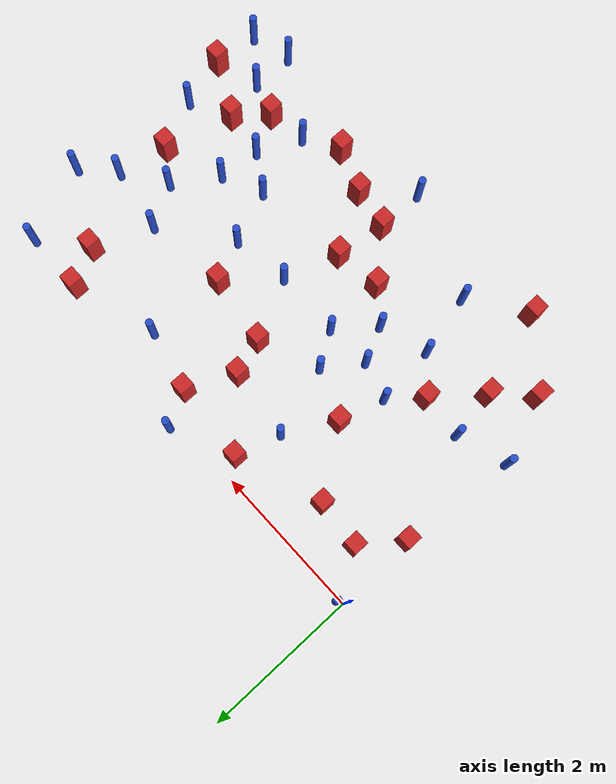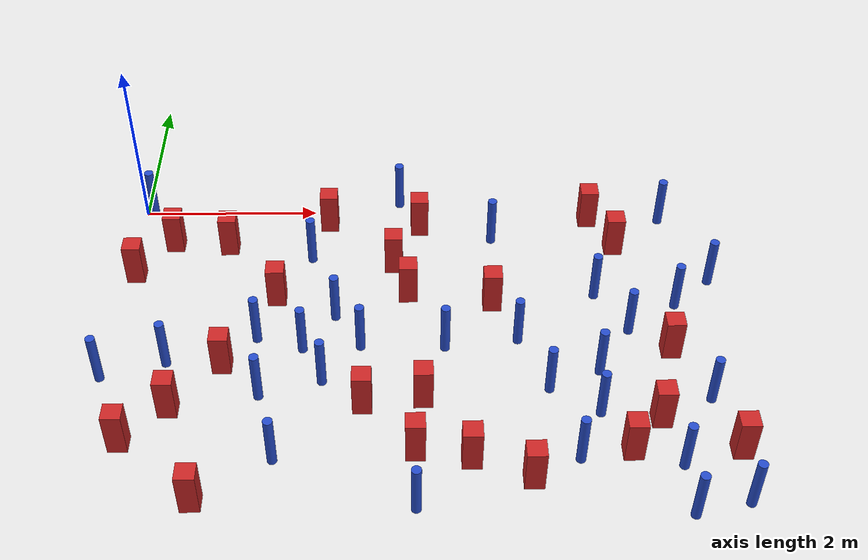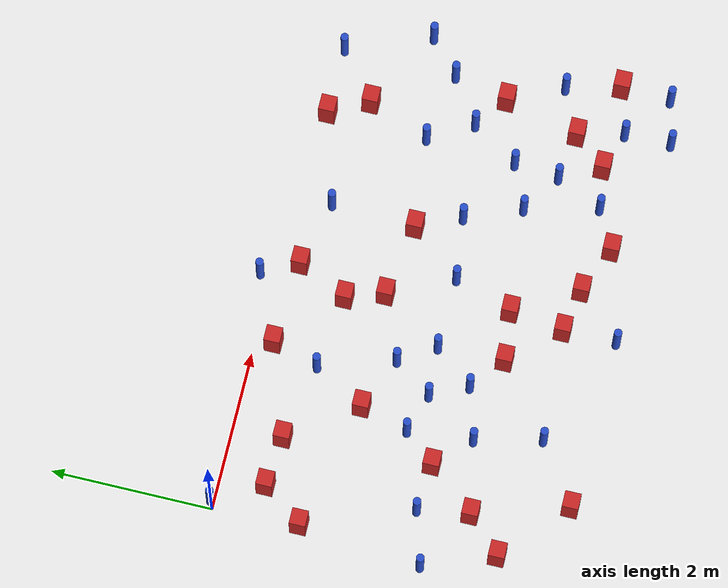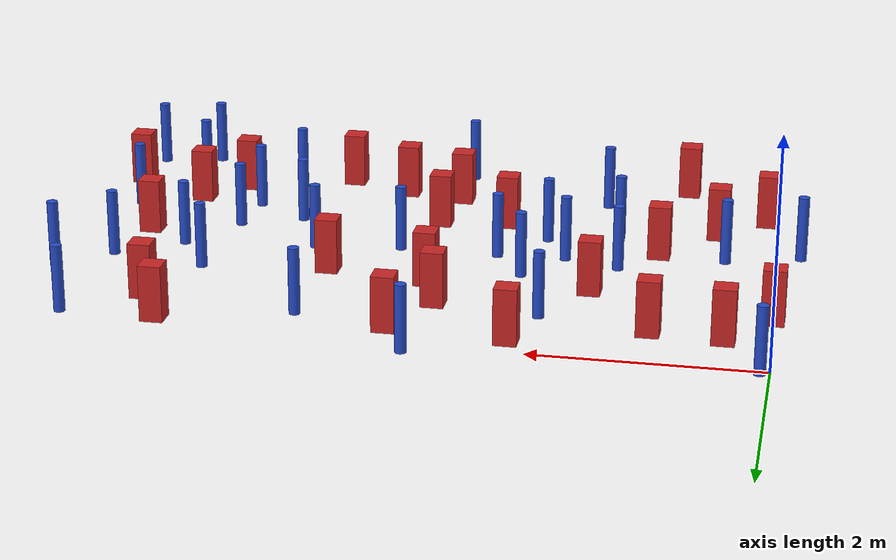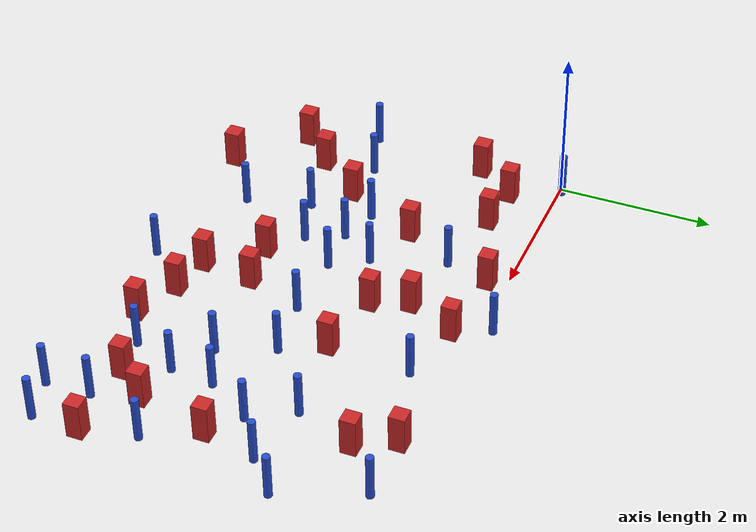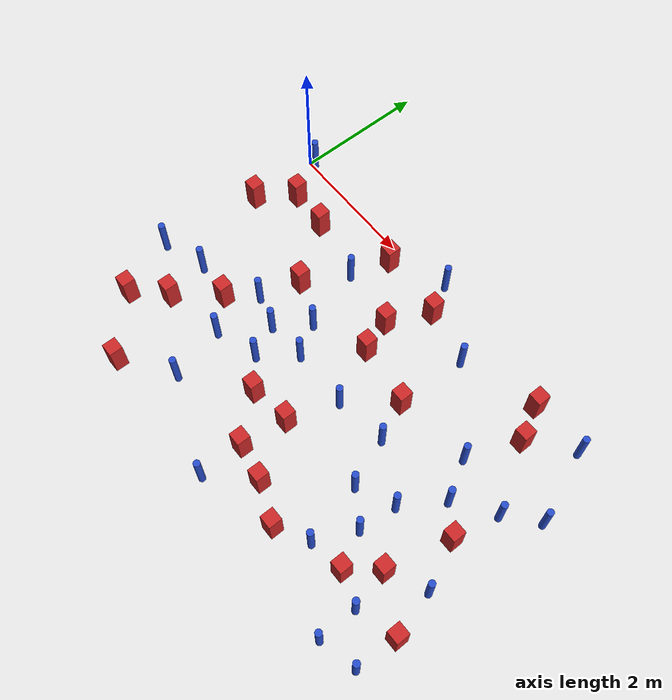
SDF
<sdf version="1.6">
 <model name="dense_42">
  <model name="pole_obstacle6">
   <static>true</static>
   <pose>5.07800445016 -2.56818857916 2.88873142074e-08 -9.90536690245e-09 4.6021994898e-07 -1.20965994966e-07</pose>
   <link name="link">
    <pose>0 0 0.3 0 -0 0</pose>
    <inertial>
     <mass>1</mass>
     <inertia><ixx>0.145833</ixx><ixy>0</ixy><ixz>0</ixz><iyy>0.145833</iyy><iyz>0</iyz><izz>0.125</izz></inertia>
    </inertial>
    <collision name="collision">
     <geometry><cylinder><radius>0.05</radius><length>.6</length></cylinder></geometry>
    </collision>
    <visual name="visual">
     <geometry><cylinder><radius>0.05</radius><length>.6</length></cylinder></geometry>
     <material>
      <script><name>Gazebo/Blue</name><uri>file://media/materials/scripts/gazebo.material</uri></script>
     </material>
    </visual>
   </link>
  </model>
  <model name="pole_obstacle11">
   <static>true</static>
   <pose>5.45333464974 -1.98299385944 2.88873142074e-08 -9.90536689117e-09 4.60219949006e-07 -1.20965994949e-07</pose>
   <link name="link">
    <pose>0 0 0.3 0 -0 0</pose>
    <inertial>
     <mass>1</mass>
     <inertia><ixx>0.145833</ixx><ixy>0</ixy><ixz>0</ixz><iyy>0.145833</iyy><iyz>0</iyz><izz>0.125</izz></inertia>
    </inertial>
    <collision name="collision">
     <geometry><cylinder><radius>0.05</radius><length>.6</length></cylinder></geometry>
    </collision>
    <visual name="visual">
     <geometry><cylinder><radius>0.05</radius><length>.6</length></cylinder></geometry>
     <material>
      <script><name>Gazebo/Blue</name><uri>file://media/materials/scripts/gazebo.material</uri></script>
     </material>
    </visual>
   </link>
  </model>
  <model name="square_post_obstacle29">
   <static>true</static>
   <pose>1.04799387 -0.626531342644 8.22691968438e-08 7.2212513382e-06 -7.54495500217e-07 2.29674213826e-05</pose>
   <link name="link">
    <pose>0 0 0.25 0 -0 0</pose>
    <inertial>
     <mass>100</mass>
     <inertia>
      <ixx>0.166667</ixx>
      <ixy>0</ixy>
      <ixz>0</ixz>
      <iyy>0.166667</iyy>
      <iyz>0</iyz>
      <izz>0.166667</izz>
     </inertia>
    </inertial>
    <collision name="collision"><geometry><box><size>.2 .2 .5</size></box></geometry></collision>
    <visual name="visual">
     <geometry><box><size>.2 .2 .5</size></box></geometry>
     <material>
      <script><name>Gazebo/Red</name><uri>file://media/materials/scripts/gazebo.material</uri></script>
     </material>
    </visual>
   </link>
  </model>
  <model name="square_post_obstacle30">
   <static>true</static>
   <pose>0.649804392565 -3.05325053284 8.22691968438e-08 7.2212513382e-06 -7.54495500217e-07 2.29674213826e-05</pose>
   <link name="link">
    <pose>0 0 0.25 0 -0 0</pose>
    <inertial>
     <mass>100</mass>
     <inertia>
      <ixx>0.166667</ixx>
      <ixy>0</ixy>
      <ixz>0</ixz>
      <iyy>0.166667</iyy>
      <iyz>0</iyz>
      <izz>0.166667</izz>
     </inertia>
    </inertial>
    <collision name="collision"><geometry><box><size>.2 .2 .5</size></box></geometry></collision>
    <visual name="visual">
     <geometry><box><size>.2 .2 .5</size></box></geometry>
     <material>
      <script><name>Gazebo/Red</name><uri>file://media/materials/scripts/gazebo.material</uri></script>
     </material>
    </visual>
   </link>
  </model>
  <model name="square_post_obstacle31">
   <static>true</static>
   <pose>1.01575118948 -4.20764228667 8.22691968438e-08 7.2212513382e-06 -7.54495500217e-07 2.29674213826e-05</pose>
   <link name="link">
    <pose>0 0 0.25 0 -0 0</pose>
    <inertial>
     <mass>100</mass>
     <inertia>
      <ixx>0.166667</ixx>
      <ixy>0</ixy>
      <ixz>0</ixz>
      <iyy>0.166667</iyy>
      <iyz>0</iyz>
      <izz>0.166667</izz>
     </inertia>
    </inertial>
    <collision name="collision"><geometry><box><size>.2 .2 .5</size></box></geometry></collision>
    <visual name="visual">
     <geometry><box><size>.2 .2 .5</size></box></geometry>
     <material>
      <script><name>Gazebo/Red</name><uri>file://media/materials/scripts/gazebo.material</uri></script>
     </material>
    </visual>
   </link>
  </model>
  <model name="square_post_obstacle34">
   <static>true</static>
   <pose>1.64515901207 -1.46285780153 8.22691968438e-08 7.2212513382e-06 -7.54495500217e-07 2.29674213826e-05</pose>
   <link name="link">
    <pose>0 0 0.25 0 -0 0</pose>
    <inertial>
     <mass>100</mass>
     <inertia>
      <ixx>0.166667</ixx>
      <ixy>0</ixy>
      <ixz>0</ixz>
      <iyy>0.166667</iyy>
      <iyz>0</iyz>
      <izz>0.166667</izz>
     </inertia>
    </inertial>
    <collision name="collision"><geometry><box><size>.2 .2 .5</size></box></geometry></collision>
    <visual name="visual">
     <geometry><box><size>.2 .2 .5</size></box></geometry>
     <material>
      <script><name>Gazebo/Red</name><uri>file://media/materials/scripts/gazebo.material</uri></script>
     </material>
    </visual>
   </link>
  </model>
  <model name="pole_obstacle43">
   <static>true</static>
   <pose>5.76211424537 -3.80005546341 2.88873142074e-08 -9.90536690245e-09 4.6021994898e-07 -1.20965994966e-07</pose>
   <link name="link">
    <pose>0 0 0.3 0 -0 0</pose>
    <inertial>
     <mass>1</mass>
     <inertia><ixx>0.145833</ixx><ixy>0</ixy><ixz>0</ixz><iyy>0.145833</iyy><iyz>0</iyz><izz>0.125</izz></inertia>
    </inertial>
    <collision name="collision">
     <geometry><cylinder><radius>0.05</radius><length>.6</length></cylinder></geometry>
    </collision>
    <visual name="visual">
     <geometry><cylinder><radius>0.05</radius><length>.6</length></cylinder></geometry>
     <material>
      <script><name>Gazebo/Blue</name><uri>file://media/materials/scripts/gazebo.material</uri></script>
     </material>
    </visual>
   </link>
  </model>
  <model name="pole_obstacle50">
   <static>true</static>
   <pose>1.74576146803 -3.70137350015 2.88873142074e-08 -9.90536689791e-09 4.6021994899e-07 -1.20965994959e-07</pose>
   <link name="link">
    <pose>0 0 0.3 0 -0 0</pose>
    <inertial>
     <mass>1</mass>
     <inertia><ixx>0.145833</ixx><ixy>0</ixy><ixz>0</ixz><iyy>0.145833</iyy><iyz>0</iyz><izz>0.125</izz></inertia>
    </inertial>
    <collision name="collision">
     <geometry><cylinder><radius>0.05</radius><length>.6</length></cylinder></geometry>
    </collision>
    <visual name="visual">
     <geometry><cylinder><radius>0.05</radius><length>.6</length></cylinder></geometry>
     <material>
      <script><name>Gazebo/Blue</name><uri>file://media/materials/scripts/gazebo.material</uri></script>
     </material>
    </visual>
   </link>
  </model>
  <model name="square_post_obstacle50">
   <static>true</static>
   <pose>5.62051604594 -3.22619935053 8.22691968438e-08 7.2212513382e-06 -7.54495500217e-07 2.29674213826e-05</pose>
   <link name="link">
    <pose>0 0 0.25 0 -0 0</pose>
    <inertial>
     <mass>100</mass>
     <inertia>
      <ixx>0.166667</ixx>
      <ixy>0</ixy>
      <ixz>0</ixz>
      <iyy>0.166667</iyy>
      <iyz>0</iyz>
      <izz>0.166667</izz>
     </inertia>
    </inertial>
    <collision name="collision"><geometry><box><size>.2 .2 .5</size></box></geometry></collision>
    <visual name="visual">
     <geometry><box><size>.2 .2 .5</size></box></geometry>
     <material>
      <script><name>Gazebo/Red</name><uri>file://media/materials/scripts/gazebo.material</uri></script>
     </material>
    </visual>
   </link>
  </model>
  <model name="square_post_obstacle52">
   <static>true</static>
   <pose>5.43940688298 -0.665224420647 8.22691968438e-08 7.2212513382e-06 -7.54495500217e-07 2.29674213826e-05</pose>
   <link name="link">
    <pose>0 0 0.25 0 -0 0</pose>
    <inertial>
     <mass>100</mass>
     <inertia>
      <ixx>0.166667</ixx>
      <ixy>0</ixy>
      <ixz>0</ixz>
      <iyy>0.166667</iyy>
      <iyz>0</iyz>
      <izz>0.166667</izz>
     </inertia>
    </inertial>
    <collision name="collision"><geometry><box><size>.2 .2 .5</size></box></geometry></collision>
    <visual name="visual">
     <geometry><box><size>.2 .2 .5</size></box></geometry>
     <material>
      <script><name>Gazebo/Red</name><uri>file://media/materials/scripts/gazebo.material</uri></script>
     </material>
    </visual>
   </link>
  </model>
  <model name="pole_obstacle57">
   <static>true</static>
   <pose>5.02587626868 -3.1314231268 2.88873142074e-08 -9.90536690245e-09 4.6021994898e-07 -1.20965994966e-07</pose>
   <link name="link">
    <pose>0 0 0.3 0 -0 0</pose>
    <inertial>
     <mass>1</mass>
     <inertia><ixx>0.145833</ixx><ixy>0</ixy><ixz>0</ixz><iyy>0.145833</iyy><iyz>0</iyz><izz>0.125</izz></inertia>
    </inertial>
    <collision name="collision">
     <geometry><cylinder><radius>0.05</radius><length>.6</length></cylinder></geometry>
    </collision>
    <visual name="visual">
     <geometry><cylinder><radius>0.05</radius><length>.6</length></cylinder></geometry>
     <material>
      <script><name>Gazebo/Blue</name><uri>file://media/materials/scripts/gazebo.material</uri></script>
     </material>
    </visual>
   </link>
  </model>
  <model name="square_post_obstacle73">
   <static>true</static>
   <pose>1.13918228408 -2.4591533872 8.22691968438e-08 7.2212513382e-06 -7.54495500217e-07 2.29674213826e-05</pose>
   <link name="link">
    <pose>0 0 0.25 0 -0 0</pose>
    <inertial>
     <mass>100</mass>
     <inertia>
      <ixx>0.166667</ixx>
      <ixy>0</ixy>
      <ixz>0</ixz>
      <iyy>0.166667</iyy>
      <iyz>0</iyz>
      <izz>0.166667</izz>
     </inertia>
    </inertial>
    <collision name="collision"><geometry><box><size>.2 .2 .5</size></box></geometry></collision>
    <visual name="visual">
     <geometry><box><size>.2 .2 .5</size></box></geometry>
     <material>
      <script><name>Gazebo/Red</name><uri>file://media/materials/scripts/gazebo.material</uri></script>
     </material>
    </visual>
   </link>
  </model>
  <model name="square_post_obstacle74">
   <static>true</static>
   <pose>2.61325503649 -3.01660771298 8.22691968438e-08 7.2212513382e-06 -7.54495500217e-07 2.29674213826e-05</pose>
   <link name="link">
    <pose>0 0 0.25 0 -0 0</pose>
    <inertial>
     <mass>100</mass>
     <inertia>
      <ixx>0.166667</ixx>
      <ixy>0</ixy>
      <ixz>0</ixz>
      <iyy>0.166667</iyy>
      <iyz>0</iyz>
      <izz>0.166667</izz>
     </inertia>
    </inertial>
    <collision name="collision"><geometry><box><size>.2 .2 .5</size></box></geometry></collision>
    <visual name="visual">
     <geometry><box><size>.2 .2 .5</size></box></geometry>
     <material>
      <script><name>Gazebo/Red</name><uri>file://media/materials/scripts/gazebo.material</uri></script>
     </material>
    </visual>
   </link>
  </model>
  <model name="square_post_obstacle76">
   <static>true</static>
   <pose>3.22528525514 -0.31354746156 8.22691968438e-08 7.2212513382e-06 -7.54495500217e-07 2.29674213826e-05</pose>
   <link name="link">
    <pose>0 0 0.25 0 -0 0</pose>
    <inertial>
     <mass>100</mass>
     <inertia>
      <ixx>0.166667</ixx>
      <ixy>0</ixy>
      <ixz>0</ixz>
      <iyy>0.166667</iyy>
      <iyz>0</iyz>
      <izz>0.166667</izz>
     </inertia>
    </inertial>
    <collision name="collision"><geometry><box><size>.2 .2 .5</size></box></geometry></collision>
    <visual name="visual">
     <geometry><box><size>.2 .2 .5</size></box></geometry>
     <material>
      <script><name>Gazebo/Red</name><uri>file://media/materials/scripts/gazebo.material</uri></script>
     </material>
    </visual>
   </link>
  </model>
  <model name="pole_obstacle73">
   <static>true</static>
   <pose>6.43886423955 -1.22574422444 2.88873142074e-08 -9.90536689445e-09 4.60219948999e-07 -1.20965994956e-07</pose>
   <link name="link">
    <pose>0 0 0.3 0 -0 0</pose>
    <inertial>
     <mass>1</mass>
     <inertia><ixx>0.145833</ixx><ixy>0</ixy><ixz>0</ixz><iyy>0.145833</iyy><iyz>0</iyz><izz>0.125</izz></inertia>
    </inertial>
    <collision name="collision">
     <geometry><cylinder><radius>0.05</radius><length>.6</length></cylinder></geometry>
    </collision>
    <visual name="visual">
     <geometry><cylinder><radius>0.05</radius><length>.6</length></cylinder></geometry>
     <material>
      <script><name>Gazebo/Blue</name><uri>file://media/materials/scripts/gazebo.material</uri></script>
     </material>
    </visual>
   </link>
  </model>
  <model name="pole_obstacle74">
   <static>true</static>
   <pose>6.32249126544 -4.25089704022 2.88873142074e-08 -9.90536690842e-09 4.60219948965e-07 -1.20965994976e-07</pose>
   <link name="link">
    <pose>0 0 0.3 0 -0 0</pose>
    <inertial>
     <mass>1</mass>
     <inertia><ixx>0.145833</ixx><ixy>0</ixy><ixz>0</ixz><iyy>0.145833</iyy><iyz>0</iyz><izz>0.125</izz></inertia>
    </inertial>
    <collision name="collision">
     <geometry><cylinder><radius>0.05</radius><length>.6</length></cylinder></geometry>
    </collision>
    <visual name="visual">
     <geometry><cylinder><radius>0.05</radius><length>.6</length></cylinder></geometry>
     <material>
      <script><name>Gazebo/Blue</name><uri>file://media/materials/scripts/gazebo.material</uri></script>
     </material>
    </visual>
   </link>
  </model>
  <model name="pole_obstacle76">
   <static>true</static>
   <pose>4.04955613045 -0.508050693157 2.88873142074e-08 -9.9053668967e-09 4.60219948993e-07 -1.20965994959e-07</pose>
   <link name="link">
    <pose>0 0 0.3 0 -0 0</pose>
    <inertial>
     <mass>1</mass>
     <inertia><ixx>0.145833</ixx><ixy>0</ixy><ixz>0</ixz><iyy>0.145833</iyy><iyz>0</iyz><izz>0.125</izz></inertia>
    </inertial>
    <collision name="collision">
     <geometry><cylinder><radius>0.05</radius><length>.6</length></cylinder></geometry>
    </collision>
    <visual name="visual">
     <geometry><cylinder><radius>0.05</radius><length>.6</length></cylinder></geometry>
     <material>
      <script><name>Gazebo/Blue</name><uri>file://media/materials/scripts/gazebo.material</uri></script>
     </material>
    </visual>
   </link>
  </model>
  <model name="pole_obstacle79">
   <static>true</static>
   <pose>3.14856670522 -4.28808477071 2.88873142074e-08 -9.90536689859e-09 4.60219948989e-07 -1.20965994961e-07</pose>
   <link name="link">
    <pose>0 0 0.3 0 -0 0</pose>
    <inertial>
     <mass>1</mass>
     <inertia><ixx>0.145833</ixx><ixy>0</ixy><ixz>0</ixz><iyy>0.145833</iyy><iyz>0</iyz><izz>0.125</izz></inertia>
    </inertial>
    <collision name="collision">
     <geometry><cylinder><radius>0.05</radius><length>.6</length></cylinder></geometry>
    </collision>
    <visual name="visual">
     <geometry><cylinder><radius>0.05</radius><length>.6</length></cylinder></geometry>
     <material>
      <script><name>Gazebo/Blue</name><uri>file://media/materials/scripts/gazebo.material</uri></script>
     </material>
    </visual>
   </link>
  </model>
  <model name="square_post_obstacle79">
   <static>true</static>
   <pose>3.08751672439 -1.41542759394 8.22691968438e-08 7.2212513382e-06 -7.54495500217e-07 2.29674213826e-05</pose>
   <link name="link">
    <pose>0 0 0.25 0 -0 0</pose>
    <inertial>
     <mass>100</mass>
     <inertia>
      <ixx>0.166667</ixx>
      <ixy>0</ixy>
      <ixz>0</ixz>
      <iyy>0.166667</iyy>
      <iyz>0</iyz>
      <izz>0.166667</izz>
     </inertia>
    </inertial>
    <collision name="collision"><geometry><box><size>.2 .2 .5</size></box></geometry></collision>
    <visual name="visual">
     <geometry><box><size>.2 .2 .5</size></box></geometry>
     <material>
      <script><name>Gazebo/Red</name><uri>file://media/materials/scripts/gazebo.material</uri></script>
     </material>
    </visual>
   </link>
  </model>
  <model name="pole_obstacle87">
   <static>true</static>
   <pose>5.77335011089 -4.37929048621 2.88873142074e-08 -9.90536690842e-09 4.60219948965e-07 -1.20965994976e-07</pose>
   <link name="link">
    <pose>0 0 0.3 0 -0 0</pose>
    <inertial>
     <mass>1</mass>
     <inertia><ixx>0.145833</ixx><ixy>0</ixy><ixz>0</ixz><iyy>0.145833</iyy><iyz>0</iyz><izz>0.125</izz></inertia>
    </inertial>
    <collision name="collision">
     <geometry><cylinder><radius>0.05</radius><length>.6</length></cylinder></geometry>
    </collision>
    <visual name="visual">
     <geometry><cylinder><radius>0.05</radius><length>.6</length></cylinder></geometry>
     <material>
      <script><name>Gazebo/Blue</name><uri>file://media/materials/scripts/gazebo.material</uri></script>
     </material>
    </visual>
   </link>
  </model>
  <model name="pole_obstacle91">
   <static>true</static>
   <pose>3.47403646986 -2.21186572789 2.88873142074e-08 -9.90536690232e-09 4.6021994898e-07 -1.20965994968e-07</pose>
   <link name="link">
    <pose>0 0 0.3 0 -0 0</pose>
    <inertial>
     <mass>1</mass>
     <inertia><ixx>0.145833</ixx><ixy>0</ixy><ixz>0</ixz><iyy>0.145833</iyy><iyz>0</iyz><izz>0.125</izz></inertia>
    </inertial>
    <collision name="collision">
     <geometry><cylinder><radius>0.05</radius><length>.6</length></cylinder></geometry>
    </collision>
    <visual name="visual">
     <geometry><cylinder><radius>0.05</radius><length>.6</length></cylinder></geometry>
     <material>
      <script><name>Gazebo/Blue</name><uri>file://media/materials/scripts/gazebo.material</uri></script>
     </material>
    </visual>
   </link>
  </model>
  <model name="square_post_obstacle84">
   <static>true</static>
   <pose>3.69395237723 -3.72712531034 8.22691968438e-08 7.2212513382e-06 -7.54495500217e-07 2.29674213826e-05</pose>
   <link name="link">
    <pose>0 0 0.25 0 -0 0</pose>
    <inertial>
     <mass>100</mass>
     <inertia>
      <ixx>0.166667</ixx>
      <ixy>0</ixy>
      <ixz>0</ixz>
      <iyy>0.166667</iyy>
      <iyz>0</iyz>
      <izz>0.166667</izz>
     </inertia>
    </inertial>
    <collision name="collision"><geometry><box><size>.2 .2 .5</size></box></geometry></collision>
    <visual name="visual">
     <geometry><box><size>.2 .2 .5</size></box></geometry>
     <material>
      <script><name>Gazebo/Red</name><uri>file://media/materials/scripts/gazebo.material</uri></script>
     </material>
    </visual>
   </link>
  </model>
  <model name="square_post_obstacle85">
   <static>true</static>
   <pose>2.9288782001 -0.940225202454 8.22691968438e-08 7.2212513382e-06 -7.54495500217e-07 2.29674213826e-05</pose>
   <link name="link">
    <pose>0 0 0.25 0 -0 0</pose>
    <inertial>
     <mass>100</mass>
     <inertia>
      <ixx>0.166667</ixx>
      <ixy>0</ixy>
      <ixz>0</ixz>
      <iyy>0.166667</iyy>
      <iyz>0</iyz>
      <izz>0.166667</izz>
     </inertia>
    </inertial>
    <collision name="collision"><geometry><box><size>.2 .2 .5</size></box></geometry></collision>
    <visual name="visual">
     <geometry><box><size>.2 .2 .5</size></box></geometry>
     <material>
      <script><name>Gazebo/Red</name><uri>file://media/materials/scripts/gazebo.material</uri></script>
     </material>
    </visual>
   </link>
  </model>
  <model name="square_post_obstacle87">
   <static>true</static>
   <pose>4.28241273989 -3.96607354375 8.22691968438e-08 7.2212513382e-06 -7.54495500217e-07 2.29674213826e-05</pose>
   <link name="link">
    <pose>0 0 0.25 0 -0 0</pose>
    <inertial>
     <mass>100</mass>
     <inertia>
      <ixx>0.166667</ixx>
      <ixy>0</ixy>
      <ixz>0</ixz>
      <iyy>0.166667</iyy>
      <iyz>0</iyz>
      <izz>0.166667</izz>
     </inertia>
    </inertial>
    <collision name="collision"><geometry><box><size>.2 .2 .5</size></box></geometry></collision>
    <visual name="visual">
     <geometry><box><size>.2 .2 .5</size></box></geometry>
     <material>
      <script><name>Gazebo/Red</name><uri>file://media/materials/scripts/gazebo.material</uri></script>
     </material>
    </visual>
   </link>
  </model>
  <model name="pole_obstacle99">
   <static>true</static>
   <pose>5.13983535397 -1.43813014883 2.88873142074e-08 -9.90536689445e-09 4.60219948999e-07 -1.20965994956e-07</pose>
   <link name="link">
    <pose>0 0 0.3 0 -0 0</pose>
    <inertial>
     <mass>1</mass>
     <inertia><ixx>0.145833</ixx><ixy>0</ixy><ixz>0</ixz><iyy>0.145833</iyy><iyz>0</iyz><izz>0.125</izz></inertia>
    </inertial>
    <collision name="collision">
     <geometry><cylinder><radius>0.05</radius><length>.6</length></cylinder></geometry>
    </collision>
    <visual name="visual">
     <geometry><cylinder><radius>0.05</radius><length>.6</length></cylinder></geometry>
     <material>
      <script><name>Gazebo/Blue</name><uri>file://media/materials/scripts/gazebo.material</uri></script>
     </material>
    </visual>
   </link>
  </model>
  <model name="pole_obstacle101">
   <static>true</static>
   <pose>4.53423497425 -2.80590181872 2.88873142074e-08 -9.90536690245e-09 4.6021994898e-07 -1.20965994966e-07</pose>
   <link name="link">
    <pose>0 0 0.3 0 -0 0</pose>
    <inertial>
     <mass>1</mass>
     <inertia><ixx>0.145833</ixx><ixy>0</ixy><ixz>0</ixz><iyy>0.145833</iyy><iyz>0</iyz><izz>0.125</izz></inertia>
    </inertial>
    <collision name="collision">
     <geometry><cylinder><radius>0.05</radius><length>.6</length></cylinder></geometry>
    </collision>
    <visual name="visual">
     <geometry><cylinder><radius>0.05</radius><length>.6</length></cylinder></geometry>
     <material>
      <script><name>Gazebo/Blue</name><uri>file://media/materials/scripts/gazebo.material</uri></script>
     </material>
    </visual>
   </link>
  </model>
  <model name="pole_obstacle108">
   <static>true</static>
   <pose>2.29759372714 -1.74579815133 2.88873142074e-08 -9.90536689395e-09 4.60219949e-07 -1.20965994953e-07</pose>
   <link name="link">
    <pose>0 0 0.3 0 -0 0</pose>
    <inertial>
     <mass>1</mass>
     <inertia><ixx>0.145833</ixx><ixy>0</ixy><ixz>0</ixz><iyy>0.145833</iyy><iyz>0</iyz><izz>0.125</izz></inertia>
    </inertial>
    <collision name="collision">
     <geometry><cylinder><radius>0.05</radius><length>.6</length></cylinder></geometry>
    </collision>
    <visual name="visual">
     <geometry><cylinder><radius>0.05</radius><length>.6</length></cylinder></geometry>
     <material>
      <script><name>Gazebo/Blue</name><uri>file://media/materials/scripts/gazebo.material</uri></script>
     </material>
    </visual>
   </link>
  </model>
  <model name="square_post_obstacle101">
   <static>true</static>
   <pose>3.233031009 -2.94264514317 8.22691968438e-08 7.2212513382e-06 -7.54495500217e-07 2.29674213826e-05</pose>
   <link name="link">
    <pose>0 0 0.25 0 -0 0</pose>
    <inertial>
     <mass>100</mass>
     <inertia>
      <ixx>0.166667</ixx>
      <ixy>0</ixy>
      <ixz>0</ixz>
      <iyy>0.166667</iyy>
      <iyz>0</iyz>
      <izz>0.166667</izz>
     </inertia>
    </inertial>
    <collision name="collision"><geometry><box><size>.2 .2 .5</size></box></geometry></collision>
    <visual name="visual">
     <geometry><box><size>.2 .2 .5</size></box></geometry>
     <material>
      <script><name>Gazebo/Red</name><uri>file://media/materials/scripts/gazebo.material</uri></script>
     </material>
    </visual>
   </link>
  </model>
  <model name="pole_obstacle117">
   <static>true</static>
   <pose>6.03585243432 -0.184891750847 2.88873142074e-08 -9.90536689378e-09 4.60219949e-07 -1.20965994955e-07</pose>
   <link name="link">
    <pose>0 0 0.3 0 -0 0</pose>
    <inertial>
     <mass>1</mass>
     <inertia><ixx>0.145833</ixx><ixy>0</ixy><ixz>0</ixz><iyy>0.145833</iyy><iyz>0</iyz><izz>0.125</izz></inertia>
    </inertial>
    <collision name="collision">
     <geometry><cylinder><radius>0.05</radius><length>.6</length></cylinder></geometry>
    </collision>
    <visual name="visual">
     <geometry><cylinder><radius>0.05</radius><length>.6</length></cylinder></geometry>
     <material>
      <script><name>Gazebo/Blue</name><uri>file://media/materials/scripts/gazebo.material</uri></script>
     </material>
    </visual>
   </link>
  </model>
  <model name="square_post_obstacle104">
   <static>true</static>
   <pose>0.220178585552 -3.48343811061 8.22691968438e-08 7.2212513382e-06 -7.54495500217e-07 2.29674213826e-05</pose>
   <link name="link">
    <pose>0 0 0.25 0 -0 0</pose>
    <inertial>
     <mass>100</mass>
     <inertia>
      <ixx>0.166667</ixx>
      <ixy>0</ixy>
      <ixz>0</ixz>
      <iyy>0.166667</iyy>
      <iyz>0</iyz>
      <izz>0.166667</izz>
     </inertia>
    </inertial>
    <collision name="collision"><geometry><box><size>.2 .2 .5</size></box></geometry></collision>
    <visual name="visual">
     <geometry><box><size>.2 .2 .5</size></box></geometry>
     <material>
      <script><name>Gazebo/Red</name><uri>file://media/materials/scripts/gazebo.material</uri></script>
     </material>
    </visual>
   </link>
  </model>
  <model name="square_post_obstacle110">
   <static>true</static>
   <pose>5.28047160154 -3.63027524024 8.22691968438e-08 7.2212513382e-06 -7.54495500217e-07 2.29674213826e-05</pose>
   <link name="link">
    <pose>0 0 0.25 0 -0 0</pose>
    <inertial>
     <mass>100</mass>
     <inertia>
      <ixx>0.166667</ixx>
      <ixy>0</ixy>
      <ixz>0</ixz>
      <iyy>0.166667</iyy>
      <iyz>0</iyz>
      <izz>0.166667</izz>
     </inertia>
    </inertial>
    <collision name="collision"><geometry><box><size>.2 .2 .5</size></box></geometry></collision>
    <visual name="visual">
     <geometry><box><size>.2 .2 .5</size></box></geometry>
     <material>
      <script><name>Gazebo/Red</name><uri>file://media/materials/scripts/gazebo.material</uri></script>
     </material>
    </visual>
   </link>
  </model>
  <model name="square_post_obstacle114">
   <static>true</static>
   <pose>0.0400692485759 -1.07572140019 8.22691968438e-08 7.2212513382e-06 -7.54495500217e-07 2.29674213826e-05</pose>
   <link name="link">
    <pose>0 0 0.25 0 -0 0</pose>
    <inertial>
     <mass>100</mass>
     <inertia>
      <ixx>0.166667</ixx>
      <ixy>0</ixy>
      <ixz>0</ixz>
      <iyy>0.166667</iyy>
      <iyz>0</iyz>
      <izz>0.166667</izz>
     </inertia>
    </inertial>
    <collision name="collision"><geometry><box><size>.2 .2 .5</size></box></geometry></collision>
    <visual name="visual">
     <geometry><box><size>.2 .2 .5</size></box></geometry>
     <material>
      <script><name>Gazebo/Red</name><uri>file://media/materials/scripts/gazebo.material</uri></script>
     </material>
    </visual>
   </link>
  </model>
  <model name="pole_obstacle131">
   <static>true</static>
   <pose>-0.125266160278 -2.61064426893 2.88873142074e-08 -9.9053669244e-09 4.60219948928e-07 -1.20965994988e-07</pose>
   <link name="link">
    <pose>0 0 0.3 0 -0 0</pose>
    <inertial>
     <mass>1</mass>
     <inertia><ixx>0.145833</ixx><ixy>0</ixy><ixz>0</ixz><iyy>0.145833</iyy><iyz>0</iyz><izz>0.125</izz></inertia>
    </inertial>
    <collision name="collision">
     <geometry><cylinder><radius>0.05</radius><length>.6</length></cylinder></geometry>
    </collision>
    <visual name="visual">
     <geometry><cylinder><radius>0.05</radius><length>.6</length></cylinder></geometry>
     <material>
      <script><name>Gazebo/Blue</name><uri>file://media/materials/scripts/gazebo.material</uri></script>
     </material>
    </visual>
   </link>
  </model>
  <model name="pole_obstacle135">
   <static>true</static>
   <pose>2.99512947025 0.139226255428 2.88873142074e-08 -9.90536689314e-09 4.60219949002e-07 -1.20965994953e-07</pose>
   <link name="link">
    <pose>0 0 0.3 0 -0 0</pose>
    <inertial>
     <mass>1</mass>
     <inertia><ixx>0.145833</ixx><ixy>0</ixy><ixz>0</ixz><iyy>0.145833</iyy><iyz>0</iyz><izz>0.125</izz></inertia>
    </inertial>
    <collision name="collision">
     <geometry><cylinder><radius>0.05</radius><length>.6</length></cylinder></geometry>
    </collision>
    <visual name="visual">
     <geometry><cylinder><radius>0.05</radius><length>.6</length></cylinder></geometry>
     <material>
      <script><name>Gazebo/Blue</name><uri>file://media/materials/scripts/gazebo.material</uri></script>
     </material>
    </visual>
   </link>
  </model>
  <model name="square_post_obstacle118">
   <static>true</static>
   <pose>6.35127671707 -3.62929094757 8.22691968438e-08 7.2212513382e-06 -7.54495500217e-07 2.29674213826e-05</pose>
   <link name="link">
    <pose>0 0 0.25 0 -0 0</pose>
    <inertial>
     <mass>100</mass>
     <inertia>
      <ixx>0.166667</ixx>
      <ixy>0</ixy>
      <ixz>0</ixz>
      <iyy>0.166667</iyy>
      <iyz>0</iyz>
      <izz>0.166667</izz>
     </inertia>
    </inertial>
    <collision name="collision"><geometry><box><size>.2 .2 .5</size></box></geometry></collision>
    <visual name="visual">
     <geometry><box><size>.2 .2 .5</size></box></geometry>
     <material>
      <script><name>Gazebo/Red</name><uri>file://media/materials/scripts/gazebo.material</uri></script>
     </material>
    </visual>
   </link>
  </model>
  <model name="square_post_obstacle131">
   <static>true</static>
   <pose>3.14621187689 -3.62011000065 8.22691968438e-08 7.2212513382e-06 -7.54495500217e-07 2.29674213826e-05</pose>
   <link name="link">
    <pose>0 0 0.25 0 -0 0</pose>
    <inertial>
     <mass>100</mass>
     <inertia>
      <ixx>0.166667</ixx>
      <ixy>0</ixy>
      <ixz>0</ixz>
      <iyy>0.166667</iyy>
      <iyz>0</iyz>
      <izz>0.166667</izz>
     </inertia>
    </inertial>
    <collision name="collision"><geometry><box><size>.2 .2 .5</size></box></geometry></collision>
    <visual name="visual">
     <geometry><box><size>.2 .2 .5</size></box></geometry>
     <material>
      <script><name>Gazebo/Red</name><uri>file://media/materials/scripts/gazebo.material</uri></script>
     </material>
    </visual>
   </link>
  </model>
  <model name="square_post_obstacle136">
   <static>true</static>
   <pose>0.418620951263 -0.567433550329 8.22691968438e-08 7.2212513382e-06 -7.54495500217e-07 2.29674213826e-05</pose>
   <link name="link">
    <pose>0 0 0.25 0 -0 0</pose>
    <inertial>
     <mass>100</mass>
     <inertia>
      <ixx>0.166667</ixx>
      <ixy>0</ixy>
      <ixz>0</ixz>
      <iyy>0.166667</iyy>
      <iyz>0</iyz>
      <izz>0.166667</izz>
     </inertia>
    </inertial>
    <collision name="collision"><geometry><box><size>.2 .2 .5</size></box></geometry></collision>
    <visual name="visual">
     <geometry><box><size>.2 .2 .5</size></box></geometry>
     <material>
      <script><name>Gazebo/Red</name><uri>file://media/materials/scripts/gazebo.material</uri></script>
     </material>
    </visual>
   </link>
  </model>
  <model name="pole_obstacle150">
   <static>true</static>
   <pose>2.00113886664 -0.817217353213 2.88873142074e-08 -9.90536689439e-09 4.60219948999e-07 -1.20965994955e-07</pose>
   <link name="link">
    <pose>0 0 0.3 0 -0 0</pose>
    <inertial>
     <mass>1</mass>
     <inertia><ixx>0.145833</ixx><ixy>0</ixy><ixz>0</ixz><iyy>0.145833</iyy><iyz>0</iyz><izz>0.125</izz></inertia>
    </inertial>
    <collision name="collision">
     <geometry><cylinder><radius>0.05</radius><length>.6</length></cylinder></geometry>
    </collision>
    <visual name="visual">
     <geometry><cylinder><radius>0.05</radius><length>.6</length></cylinder></geometry>
     <material>
      <script><name>Gazebo/Blue</name><uri>file://media/materials/scripts/gazebo.material</uri></script>
     </material>
    </visual>
   </link>
  </model>
  <model name="square_post_obstacle152">
   <static>true</static>
   <pose>5.85582270249 -2.28581051323 8.22691968438e-08 7.2212513382e-06 -7.54495500217e-07 2.29674213826e-05</pose>
   <link name="link">
    <pose>0 0 0.25 0 -0 0</pose>
    <inertial>
     <mass>100</mass>
     <inertia>
      <ixx>0.166667</ixx>
      <ixy>0</ixy>
      <ixz>0</ixz>
      <iyy>0.166667</iyy>
      <iyz>0</iyz>
      <izz>0.166667</izz>
     </inertia>
    </inertial>
    <collision name="collision"><geometry><box><size>.2 .2 .5</size></box></geometry></collision>
    <visual name="visual">
     <geometry><box><size>.2 .2 .5</size></box></geometry>
     <material>
      <script><name>Gazebo/Red</name><uri>file://media/materials/scripts/gazebo.material</uri></script>
     </material>
    </visual>
   </link>
  </model>
  <model name="pole_obstacle172">
   <static>true</static>
   <pose>0.541032036596 -2.41201989378 2.88873142074e-08 -9.90536689505e-09 4.60219948997e-07 -1.20965994956e-07</pose>
   <link name="link">
    <pose>0 0 0.3 0 -0 0</pose>
    <inertial>
     <mass>1</mass>
     <inertia><ixx>0.145833</ixx><ixy>0</ixy><ixz>0</ixz><iyy>0.145833</iyy><iyz>0</iyz><izz>0.125</izz></inertia>
    </inertial>
    <collision name="collision">
     <geometry><cylinder><radius>0.05</radius><length>.6</length></cylinder></geometry>
    </collision>
    <visual name="visual">
     <geometry><cylinder><radius>0.05</radius><length>.6</length></cylinder></geometry>
     <material>
      <script><name>Gazebo/Blue</name><uri>file://media/materials/scripts/gazebo.material</uri></script>
     </material>
    </visual>
   </link>
  </model>
  <model name="square_post_obstacle163">
   <static>true</static>
   <pose>4.00371562733 -1.56601663779 8.22691968438e-08 7.2212513382e-06 -7.54495500217e-07 2.29674213826e-05</pose>
   <link name="link">
    <pose>0 0 0.25 0 -0 0</pose>
    <inertial>
     <mass>100</mass>
     <inertia>
      <ixx>0.166667</ixx>
      <ixy>0</ixy>
      <ixz>0</ixz>
      <iyy>0.166667</iyy>
      <iyz>0</iyz>
      <izz>0.166667</izz>
     </inertia>
    </inertial>
    <collision name="collision"><geometry><box><size>.2 .2 .5</size></box></geometry></collision>
    <visual name="visual">
     <geometry><box><size>.2 .2 .5</size></box></geometry>
     <material>
      <script><name>Gazebo/Red</name><uri>file://media/materials/scripts/gazebo.material</uri></script>
     </material>
    </visual>
   </link>
  </model>
  <model name="square_post_obstacle164">
   <static>true</static>
   <pose>5.1921946662 -0.178683966306 8.22691968438e-08 7.2212513382e-06 -7.54495500217e-07 2.29674213826e-05</pose>
   <link name="link">
    <pose>0 0 0.25 0 -0 0</pose>
    <inertial>
     <mass>100</mass>
     <inertia>
      <ixx>0.166667</ixx>
      <ixy>0</ixy>
      <ixz>0</ixz>
      <iyy>0.166667</iyy>
      <iyz>0</iyz>
      <izz>0.166667</izz>
     </inertia>
    </inertial>
    <collision name="collision"><geometry><box><size>.2 .2 .5</size></box></geometry></collision>
    <visual name="visual">
     <geometry><box><size>.2 .2 .5</size></box></geometry>
     <material>
      <script><name>Gazebo/Red</name><uri>file://media/materials/scripts/gazebo.material</uri></script>
     </material>
    </visual>
   </link>
  </model>
  <model name="square_post_obstacle168">
   <static>true</static>
   <pose>2.18087895144 -0.230766739282 8.22691968438e-08 7.2212513382e-06 -7.54495500217e-07 2.29674213826e-05</pose>
   <link name="link">
    <pose>0 0 0.25 0 -0 0</pose>
    <inertial>
     <mass>100</mass>
     <inertia>
      <ixx>0.166667</ixx>
      <ixy>0</ixy>
      <ixz>0</ixz>
      <iyy>0.166667</iyy>
      <iyz>0</iyz>
      <izz>0.166667</izz>
     </inertia>
    </inertial>
    <collision name="collision"><geometry><box><size>.2 .2 .5</size></box></geometry></collision>
    <visual name="visual">
     <geometry><box><size>.2 .2 .5</size></box></geometry>
     <material>
      <script><name>Gazebo/Red</name><uri>file://media/materials/scripts/gazebo.material</uri></script>
     </material>
    </visual>
   </link>
  </model>
  <model name="pole_obstacle181">
   <static>true</static>
   <pose>1.46979248773 -2.06845077472 2.88873142074e-08 -9.90536689791e-09 4.6021994899e-07 -1.20965994959e-07</pose>
   <link name="link">
    <pose>0 0 0.3 0 -0 0</pose>
    <inertial>
     <mass>1</mass>
     <inertia><ixx>0.145833</ixx><ixy>0</ixy><ixz>0</ixz><iyy>0.145833</iyy><iyz>0</iyz><izz>0.125</izz></inertia>
    </inertial>
    <collision name="collision">
     <geometry><cylinder><radius>0.05</radius><length>.6</length></cylinder></geometry>
    </collision>
    <visual name="visual">
     <geometry><cylinder><radius>0.05</radius><length>.6</length></cylinder></geometry>
     <material>
      <script><name>Gazebo/Blue</name><uri>file://media/materials/scripts/gazebo.material</uri></script>
     </material>
    </visual>
   </link>
  </model>
  <model name="pole_obstacle183">
   <static>true</static>
   <pose>4.25186001798 -2.11212015283 2.88873142074e-08 -9.90536690245e-09 4.6021994898e-07 -1.20965994966e-07</pose>
   <link name="link">
    <pose>0 0 0.3 0 -0 0</pose>
    <inertial>
     <mass>1</mass>
     <inertia><ixx>0.145833</ixx><ixy>0</ixy><ixz>0</ixz><iyy>0.145833</iyy><iyz>0</iyz><izz>0.125</izz></inertia>
    </inertial>
    <collision name="collision">
     <geometry><cylinder><radius>0.05</radius><length>.6</length></cylinder></geometry>
    </collision>
    <visual name="visual">
     <geometry><cylinder><radius>0.05</radius><length>.6</length></cylinder></geometry>
     <material>
      <script><name>Gazebo/Blue</name><uri>file://media/materials/scripts/gazebo.material</uri></script>
     </material>
    </visual>
   </link>
  </model>
  <model name="pole_obstacle186">
   <static>true</static>
   <pose>6.00923674977 -1.60302170938 2.88873142074e-08 -9.90536689445e-09 4.60219948999e-07 -1.20965994956e-07</pose>
   <link name="link">
    <pose>0 0 0.3 0 -0 0</pose>
    <inertial>
     <mass>1</mass>
     <inertia><ixx>0.145833</ixx><ixy>0</ixy><ixz>0</ixz><iyy>0.145833</iyy><iyz>0</iyz><izz>0.125</izz></inertia>
    </inertial>
    <collision name="collision">
     <geometry><cylinder><radius>0.05</radius><length>.6</length></cylinder></geometry>
    </collision>
    <visual name="visual">
     <geometry><cylinder><radius>0.05</radius><length>.6</length></cylinder></geometry>
     <material>
      <script><name>Gazebo/Blue</name><uri>file://media/materials/scripts/gazebo.material</uri></script>
     </material>
    </visual>
   </link>
  </model>
  <model name="pole_obstacle188">
   <static>true</static>
   <pose>1.54491452291 -2.87703741996 2.88873142074e-08 -9.90536689791e-09 4.6021994899e-07 -1.20965994959e-07</pose>
   <link name="link">
    <pose>0 0 0.3 0 -0 0</pose>
    <inertial>
     <mass>1</mass>
     <inertia><ixx>0.145833</ixx><ixy>0</ixy><ixz>0</ixz><iyy>0.145833</iyy><iyz>0</iyz><izz>0.125</izz></inertia>
    </inertial>
    <collision name="collision">
     <geometry><cylinder><radius>0.05</radius><length>.6</length></cylinder></geometry>
    </collision>
    <visual name="visual">
     <geometry><cylinder><radius>0.05</radius><length>.6</length></cylinder></geometry>
     <material>
      <script><name>Gazebo/Blue</name><uri>file://media/materials/scripts/gazebo.material</uri></script>
     </material>
    </visual>
   </link>
  </model>
  <model name="pole_obstacle194">
   <static>true</static>
   <pose>1.96352721111 -2.22338996661 2.88873142074e-08 -9.90536689941e-09 4.60219948987e-07 -1.20965994961e-07</pose>
   <link name="link">
    <pose>0 0 0.3 0 -0 0</pose>
    <inertial>
     <mass>1</mass>
     <inertia><ixx>0.145833</ixx><ixy>0</ixy><ixz>0</ixz><iyy>0.145833</iyy><iyz>0</iyz><izz>0.125</izz></inertia>
    </inertial>
    <collision name="collision">
     <geometry><cylinder><radius>0.05</radius><length>.6</length></cylinder></geometry>
    </collision>
    <visual name="visual">
     <geometry><cylinder><radius>0.05</radius><length>.6</length></cylinder></geometry>
     <material>
      <script><name>Gazebo/Blue</name><uri>file://media/materials/scripts/gazebo.material</uri></script>
     </material>
    </visual>
   </link>
  </model>
  <model name="pole_obstacle196">
   <static>true</static>
   <pose>0.0833551771522 0.0387779290444 2.88873142074e-08 -9.90536689643e-09 4.60219948994e-07 -1.20965994958e-07</pose>
   <link name="link">
    <pose>0 0 0.3 0 -0 0</pose>
    <inertial>
     <mass>1</mass>
     <inertia><ixx>0.145833</ixx><ixy>0</ixy><ixz>0</ixz><iyy>0.145833</iyy><iyz>0</iyz><izz>0.125</izz></inertia>
    </inertial>
    <collision name="collision">
     <geometry><cylinder><radius>0.05</radius><length>.6</length></cylinder></geometry>
    </collision>
    <visual name="visual">
     <geometry><cylinder><radius>0.05</radius><length>.6</length></cylinder></geometry>
     <material>
      <script><name>Gazebo/Blue</name><uri>file://media/materials/scripts/gazebo.material</uri></script>
     </material>
    </visual>
   </link>
  </model>
  <model name="pole_obstacle210">
   <static>true</static>
   <pose>6.17697020537 -2.95735427238 2.88873142074e-08 -9.90536690245e-09 4.6021994898e-07 -1.20965994966e-07</pose>
   <link name="link">
    <pose>0 0 0.3 0 -0 0</pose>
    <inertial>
     <mass>1</mass>
     <inertia><ixx>0.145833</ixx><ixy>0</ixy><ixz>0</ixz><iyy>0.145833</iyy><iyz>0</iyz><izz>0.125</izz></inertia>
    </inertial>
    <collision name="collision">
     <geometry><cylinder><radius>0.05</radius><length>.6</length></cylinder></geometry>
    </collision>
    <visual name="visual">
     <geometry><cylinder><radius>0.05</radius><length>.6</length></cylinder></geometry>
     <material>
      <script><name>Gazebo/Blue</name><uri>file://media/materials/scripts/gazebo.material</uri></script>
     </material>
    </visual>
   </link>
  </model>
  <model name="pole_obstacle216">
   <static>true</static>
   <pose>4.76225693031 -3.71263877562 2.88873142074e-08 -9.90536690245e-09 4.6021994898e-07 -1.20965994966e-07</pose>
   <link name="link">
    <pose>0 0 0.3 0 -0 0</pose>
    <inertial>
     <mass>1</mass>
     <inertia><ixx>0.145833</ixx><ixy>0</ixy><ixz>0</ixz><iyy>0.145833</iyy><iyz>0</iyz><izz>0.125</izz></inertia>
    </inertial>
    <collision name="collision">
     <geometry><cylinder><radius>0.05</radius><length>.6</length></cylinder></geometry>
    </collision>
    <visual name="visual">
     <geometry><cylinder><radius>0.05</radius><length>.6</length></cylinder></geometry>
     <material>
      <script><name>Gazebo/Blue</name><uri>file://media/materials/scripts/gazebo.material</uri></script>
     </material>
    </visual>
   </link>
  </model>
  <model name="pole_obstacle217">
   <static>true</static>
   <pose>2.57809227684 -2.19140984346 2.88873142074e-08 -9.90536690232e-09 4.6021994898e-07 -1.20965994968e-07</pose>
   <link name="link">
    <pose>0 0 0.3 0 -0 0</pose>
    <inertial>
     <mass>1</mass>
     <inertia><ixx>0.145833</ixx><ixy>0</ixy><ixz>0</ixz><iyy>0.145833</iyy><iyz>0</iyz><izz>0.125</izz></inertia>
    </inertial>
    <collision name="collision">
     <geometry><cylinder><radius>0.05</radius><length>.6</length></cylinder></geometry>
    </collision>
    <visual name="visual">
     <geometry><cylinder><radius>0.05</radius><length>.6</length></cylinder></geometry>
     <material>
      <script><name>Gazebo/Blue</name><uri>file://media/materials/scripts/gazebo.material</uri></script>
     </material>
    </visual>
   </link>
  </model>
  <model name="pole_obstacle222">
   <static>true</static>
   <pose>2.18656490795 -2.68288474152 2.88873142074e-08 -9.90536690232e-09 4.6021994898e-07 -1.20965994968e-07</pose>
   <link name="link">
    <pose>0 0 0.3 0 -0 0</pose>
    <inertial>
     <mass>1</mass>
     <inertia><ixx>0.145833</ixx><ixy>0</ixy><ixz>0</ixz><iyy>0.145833</iyy><iyz>0</iyz><izz>0.125</izz></inertia>
    </inertial>
    <collision name="collision">
     <geometry><cylinder><radius>0.05</radius><length>.6</length></cylinder></geometry>
    </collision>
    <visual name="visual">
     <geometry><cylinder><radius>0.05</radius><length>.6</length></cylinder></geometry>
     <material>
      <script><name>Gazebo/Blue</name><uri>file://media/materials/scripts/gazebo.material</uri></script>
     </material>
    </visual>
   </link>
  </model>
 </model>
</sdf>
